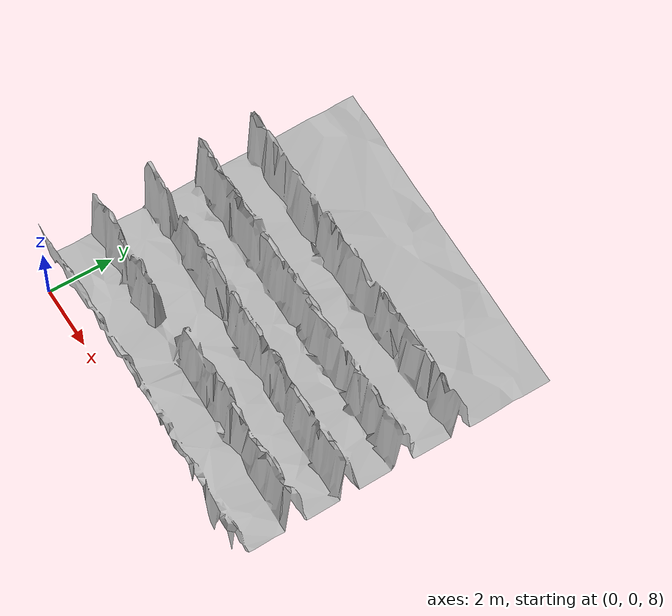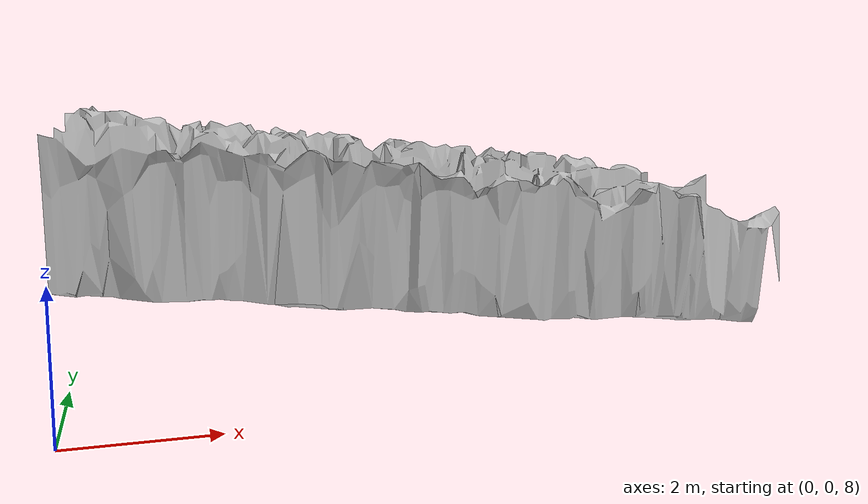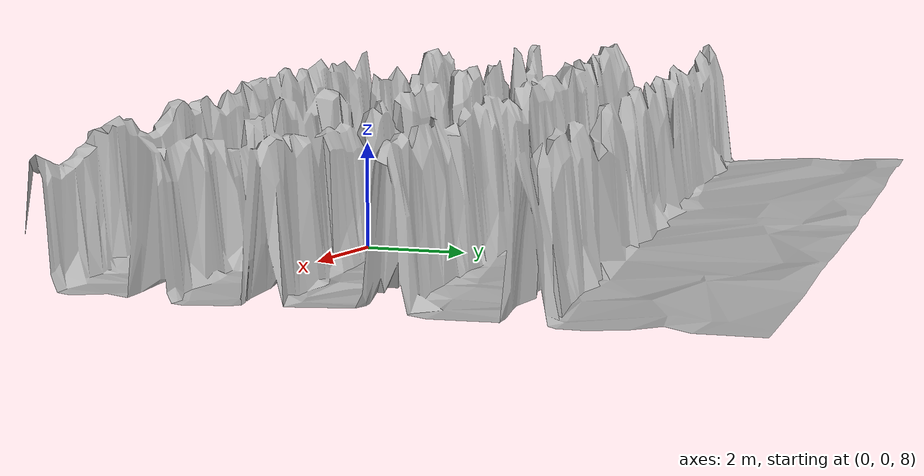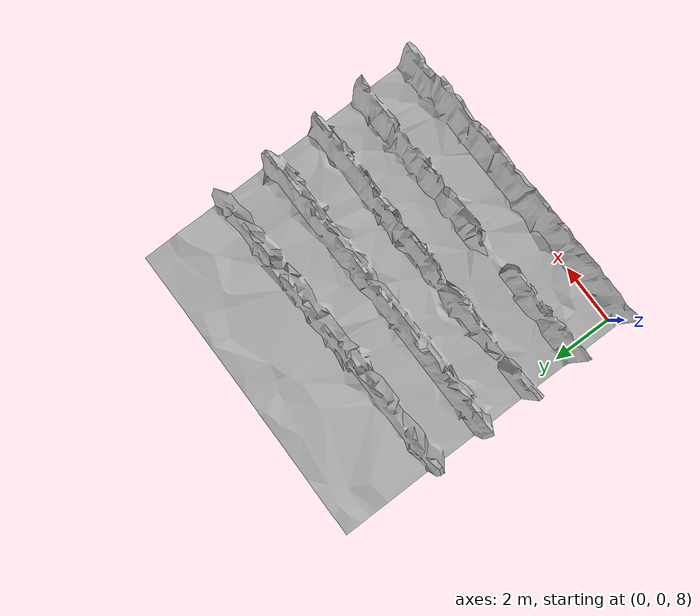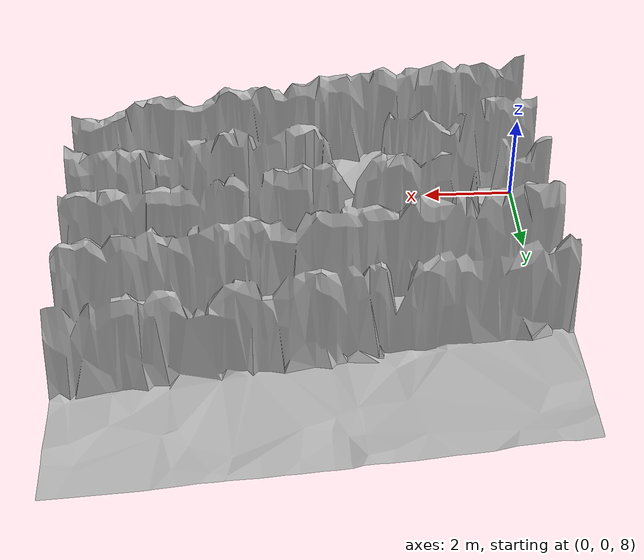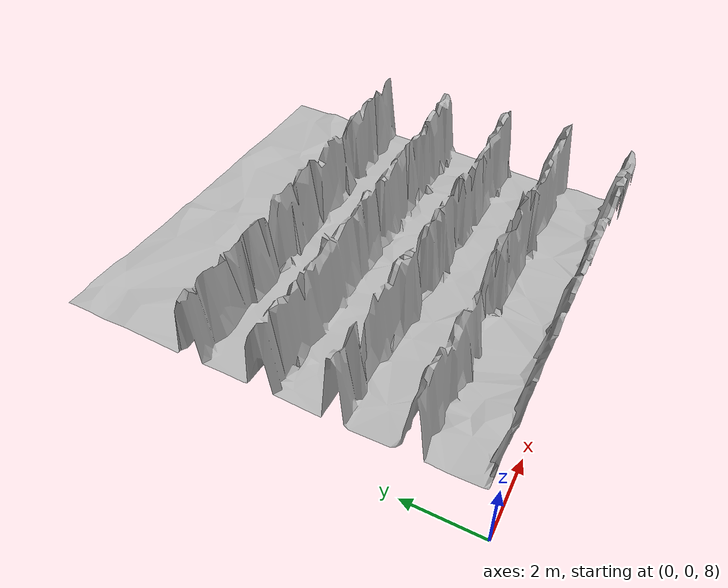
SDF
<?xml version="1.0" ?>
<sdf version="1.10">
    <model name="map_260_70">
        <link name="map_260_70_link">
            <visual name="map_260_70_visual">
                <geometry>
                    <mesh>
                        <uri>meshes/visual/map_260_70.obj</uri>
                    </mesh>
                </geometry>
            </visual>
            <collision name="map_260_70_collision">
                <surface>
                    <friction>
                        <ode>
                            <mu>2.316343837943928</mu>
                            <mu2>2.316343837943928</mu2>
                        </ode>
                        <bullet>
                            <friction>2.316343837943928</friction>
                            <friction2>2.316343837943928</friction2>
                        </bullet>
                    </friction>
                </surface>
                <geometry>
                    <mesh>
                        <uri>meshes/visual/map_260_70.obj</uri>
                    </mesh>
                </geometry>
            </collision>
        </link>
        <static>True</static>
    </model>
</sdf>
